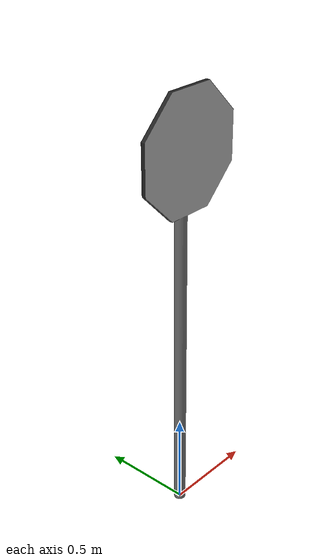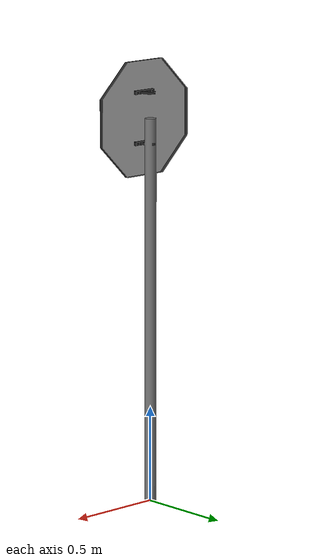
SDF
<?xml version="1.0" ?>
<sdf version="1.6">
  <model name="T_STOP">
    <static>true</static>
    <link name="link">
      <visual name="visual">
        <geometry>
          <mesh>
            <scale>1 1 1</scale>
            <uri>model://T_STOP/meshes/T_STOP.dae</uri>
          </mesh>
        </geometry>
      </visual>
    </link>
  </model>
</sdf>
